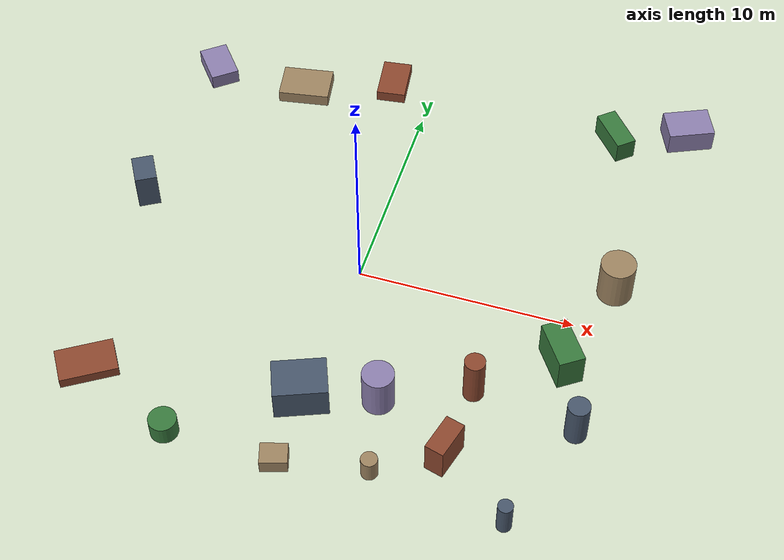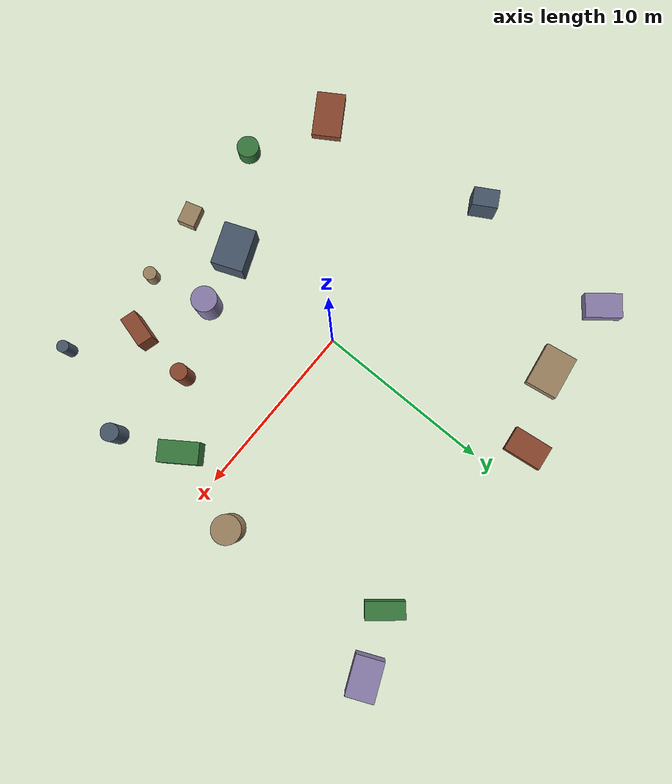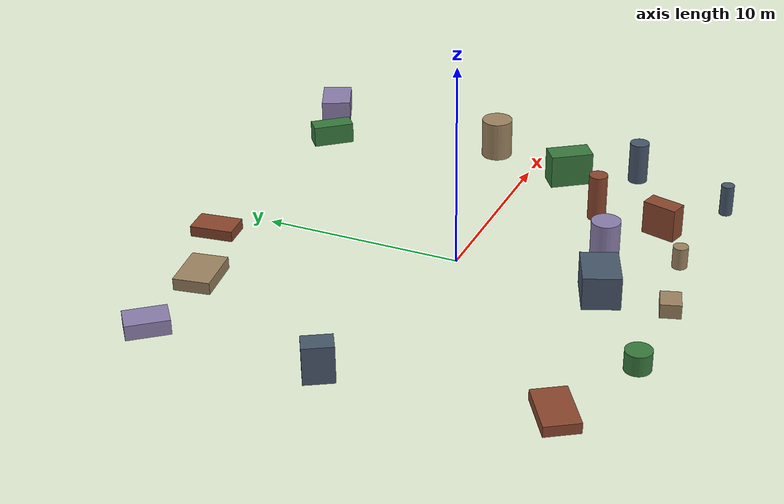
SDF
<sdf version="1.10">
 <world name="robotx_task1_uav_view">
  <gravity>0 0 -9.81</gravity>
  <physics name="physics" type="ode">
   <max_step_size>0.002</max_step_size>
   <real_time_factor>1.0</real_time_factor>
  </physics>
  <scene>
   <ambient>0.27 0.27 0.27 1.0</ambient>
   <background>0.62 0.75 0.92 1.0</background>
   <shadows>true</shadows>
   <grid>false</grid>
  </scene>
  <light name="sun" type="directional">
   <pose>0 0 300 0 0 0</pose>
   <diffuse>1.00 0.98 0.94 1.0</diffuse>
   <specular>1.00 1.00 1.00 1.0</specular>
   <direction>0.26 -0.12 -1.0</direction>
   <attenuation>
    <range>2500</range>
    <constant>0.85</constant>
    <linear>0.001</linear>
    <quadratic>0.00005</quadratic>
   </attenuation>
  </light>
  <plugin filename="gz-sim-physics-system" name="gz::sim::systems::Physics"/>
  <plugin filename="gz-sim-user-commands-system" name="gz::sim::systems::UserCommands"/>
  <plugin filename="gz-sim-scene-broadcaster-system" name="gz::sim::systems::SceneBroadcaster"/>
  <plugin filename="gz-sim-sensors-system" name="gz::sim::systems::Sensors">
   <render_engine>ogre2</render_engine>
  </plugin>
  <model name="scene_clutter_box_000">
   <static>true</static>
   <pose>-0.365 -10.573 0.370 0 0 0.290429</pose>
   <link name="link">
    <visual name="v">
     <geometry><box><size>1.201 0.981 0.699</size></box></geometry>
     <material><ambient>0.45 0.38 0.32 1.0</ambient><diffuse>0.62 0.52 0.38 1.0</diffuse></material>
    </visual>
   </link>
  </model>
  <model name="scene_clutter_cyl_001">
   <static>true</static>
   <pose>9.603 -10.692 0.844 0 0 -2.235827</pose>
   <link name="link">
    <visual name="v">
     <geometry><cylinder><radius>0.329</radius><length>1.588</length></cylinder></geometry>
     <material><ambient>0.18 0.22 0.28 1.0</ambient><diffuse>0.28 0.34 0.42 1.0</diffuse></material>
    </visual>
   </link>
  </model>
  <model name="scene_clutter_box_002">
   <static>true</static>
   <pose>6.378 -8.284 0.868 0 0 -1.839916</pose>
   <link name="link">
    <visual name="v">
     <geometry><box><size>1.738 0.883 1.696</size></box></geometry>
     <material><ambient>0.35 0.16 0.12 1.0</ambient><diffuse>0.55 0.28 0.18 1.0</diffuse></material>
    </visual>
   </link>
  </model>
  <model name="scene_clutter_cyl_003">
   <static>true</static>
   <pose>-5.336 -10.529 0.534 0 0 1.950790</pose>
   <link name="link">
    <visual name="v">
     <geometry><cylinder><radius>0.620</radius><length>0.968</length></cylinder></geometry>
     <material><ambient>0.12 0.30 0.14 1.0</ambient><diffuse>0.22 0.48 0.24 1.0</diffuse></material>
    </visual>
   </link>
  </model>
  <model name="scene_clutter_box_004">
   <static>true</static>
   <pose>12.677 12.658 0.589 0 0 -2.728168</pose>
   <link name="link">
    <visual name="v">
     <geometry><box><size>2.190 1.573 1.137</size></box></geometry>
     <material><ambient>0.40 0.35 0.50 1.0</ambient><diffuse>0.55 0.50 0.68 1.0</diffuse></material>
    </visual>
   </link>
  </model>
  <model name="scene_clutter_cyl_005">
   <static>true</static>
   <pose>11.354 2.346 1.080 0 0 -0.338788</pose>
   <link name="link">
    <visual name="v">
     <geometry><cylinder><radius>0.805</radius><length>2.060</length></cylinder></geometry>
     <material><ambient>0.45 0.38 0.32 1.0</ambient><diffuse>0.62 0.52 0.38 1.0</diffuse></material>
    </visual>
   </link>
  </model>
  <model name="scene_clutter_box_006">
   <static>true</static>
   <pose>-0.350 -7.224 0.833 0 0 -2.762642</pose>
   <link name="link">
    <visual name="v">
     <geometry><box><size>2.397 1.800 1.626</size></box></geometry>
     <material><ambient>0.18 0.22 0.28 1.0</ambient><diffuse>0.28 0.34 0.42 1.0</diffuse></material>
    </visual>
   </link>
  </model>
  <model name="scene_clutter_box_007">
   <static>true</static>
   <pose>-9.838 -8.398 0.276 0 0 0.562816</pose>
   <link name="link">
    <visual name="v">
     <geometry><box><size>2.600 1.640 0.511</size></box></geometry>
     <material><ambient>0.35 0.16 0.12 1.0</ambient><diffuse>0.55 0.28 0.18 1.0</diffuse></material>
    </visual>
   </link>
  </model>
  <model name="scene_clutter_box_008">
   <static>true</static>
   <pose>9.948 -2.237 0.878 0 0 2.176812</pose>
   <link name="link">
    <visual name="v">
     <geometry><box><size>2.197 1.196 1.716</size></box></geometry>
     <material><ambient>0.12 0.30 0.14 1.0</ambient><diffuse>0.22 0.48 0.24 1.0</diffuse></material>
    </visual>
   </link>
  </model>
  <model name="scene_clutter_box_009">
   <static>true</static>
   <pose>-10.834 10.331 0.388 0 0 -2.469325</pose>
   <link name="link">
    <visual name="v">
     <geometry><box><size>1.366 2.041 0.737</size></box></geometry>
     <material><ambient>0.40 0.35 0.50 1.0</ambient><diffuse>0.55 0.50 0.68 1.0</diffuse></material>
    </visual>
   </link>
  </model>
  <model name="scene_clutter_cyl_010">
   <static>true</static>
   <pose>3.613 -9.928 0.594 0 0 -0.525258</pose>
   <link name="link">
    <visual name="v">
     <geometry><cylinder><radius>0.370</radius><length>1.089</length></cylinder></geometry>
     <material><ambient>0.45 0.38 0.32 1.0</ambient><diffuse>0.62 0.52 0.38 1.0</diffuse></material>
    </visual>
   </link>
  </model>
  <model name="scene_clutter_cyl_011">
   <static>true</static>
   <pose>11.387 -5.565 1.127 0 0 2.944448</pose>
   <link name="link">
    <visual name="v">
     <geometry><cylinder><radius>0.494</radius><length>2.155</length></cylinder></geometry>
     <material><ambient>0.18 0.22 0.28 1.0</ambient><diffuse>0.28 0.34 0.42 1.0</diffuse></material>
    </visual>
   </link>
  </model>
  <model name="scene_clutter_box_012">
   <static>true</static>
   <pose>-2.059 11.945 0.292 0 0 1.698276</pose>
   <link name="link">
    <visual name="v">
     <geometry><box><size>2.168 1.389 0.543</size></box></geometry>
     <material><ambient>0.35 0.16 0.12 1.0</ambient><diffuse>0.55 0.28 0.18 1.0</diffuse></material>
    </visual>
   </link>
  </model>
  <model name="scene_clutter_box_013">
   <static>true</static>
   <pose>9.383 11.323 0.565 0 0 2.264416</pose>
   <link name="link">
    <visual name="v">
     <geometry><box><size>2.146 0.960 1.090</size></box></geometry>
     <material><ambient>0.12 0.30 0.14 1.0</ambient><diffuse>0.22 0.48 0.24 1.0</diffuse></material>
    </visual>
   </link>
  </model>
  <model name="scene_clutter_cyl_014">
   <static>true</static>
   <pose>2.900 -6.422 1.088 0 0 -0.899392</pose>
   <link name="link">
    <visual name="v">
     <geometry><cylinder><radius>0.714</radius><length>2.076</length></cylinder></geometry>
     <material><ambient>0.40 0.35 0.50 1.0</ambient><diffuse>0.55 0.50 0.68 1.0</diffuse></material>
    </visual>
   </link>
  </model>
  <model name="scene_clutter_box_015">
   <static>true</static>
   <pose>-6.181 10.348 0.322 0 0 0.160557</pose>
   <link name="link">
    <visual name="v">
     <geometry><box><size>2.455 1.797 0.604</size></box></geometry>
     <material><ambient>0.45 0.38 0.32 1.0</ambient><diffuse>0.62 0.52 0.38 1.0</diffuse></material>
    </visual>
   </link>
  </model>
  <model name="scene_clutter_box_016">
   <static>true</static>
   <pose>-11.153 1.661 0.932 0 0 2.093354</pose>
   <link name="link">
    <visual name="v">
     <geometry><box><size>1.423 1.019 1.823</size></box></geometry>
     <material><ambient>0.18 0.22 0.28 1.0</ambient><diffuse>0.28 0.34 0.42 1.0</diffuse></material>
    </visual>
   </link>
  </model>
  <model name="scene_clutter_cyl_017">
   <static>true</static>
   <pose>6.694 -4.819 1.236 0 0 -0.951538</pose>
   <link name="link">
    <visual name="v">
     <geometry><cylinder><radius>0.463</radius><length>2.373</length></cylinder></geometry>
     <material><ambient>0.35 0.16 0.12 1.0</ambient><diffuse>0.55 0.28 0.18 1.0</diffuse></material>
    </visual>
   </link>
  </model>
  <model name="uav_dataset_camera">
   <static>false</static>
   <pose>0 0 26 0 0 0</pose>
   <plugin filename="librobotx_overhead_motion_plugin.dylib" name="robotx::OverheadMotionPlugin">
    <radius_x_m>9.29272</radius_x_m>
    <radius_y_m>8.19218</radius_y_m>
    <angular_speed_rad_s>0.040326</angular_speed_rad_s>
    <phase_rad>2.814052</phase_rad>
    <z_wobble_m>0.08161</z_wobble_m>
    <z_wobble_hz>0.06366</z_wobble_hz>
    <z_wobble_phase_rad>1.086285</z_wobble_phase_rad>
   </plugin>
   <link name="camera_link">
    <gravity>false</gravity>
    <sensor name="top_down_rgb" type="camera">
     <always_on>true</always_on>
     <update_rate>20</update_rate>
     <pose>0 0 0 0 1.57079632679 0</pose>
     <camera>
      <horizontal_fov>1.05</horizontal_fov>
      <image><width>1920</width><height>1080</height><format>R8G8B8</format></image>
      <clip><near>0.2</near><far>600</far></clip>
     </camera>
     <topic>/robotx/uav/camera/image_raw</topic>
     <visualize>true</visualize>
    </sensor>
   </link>
  </model>
 </world>
</sdf>
